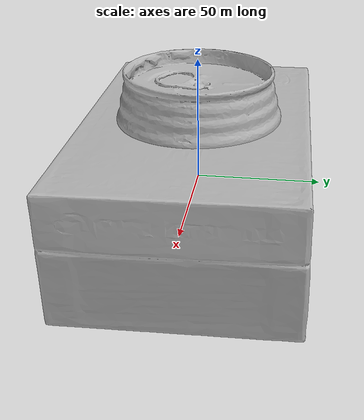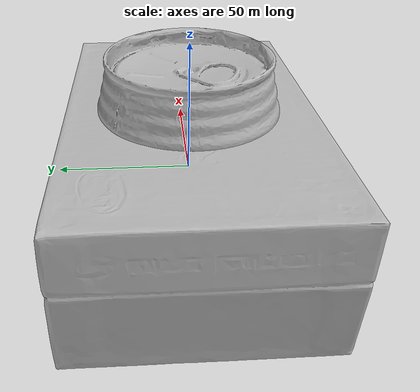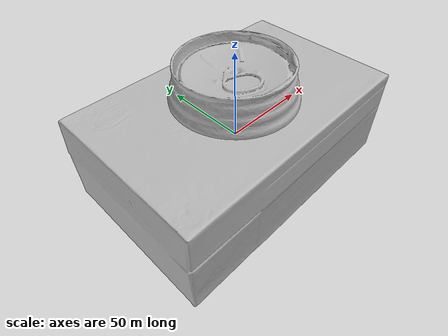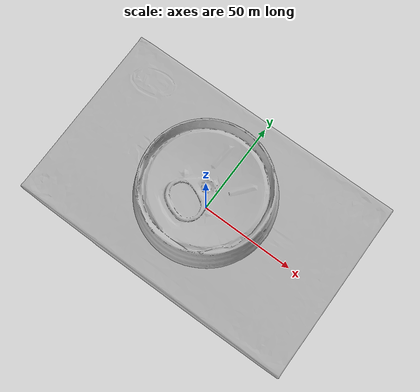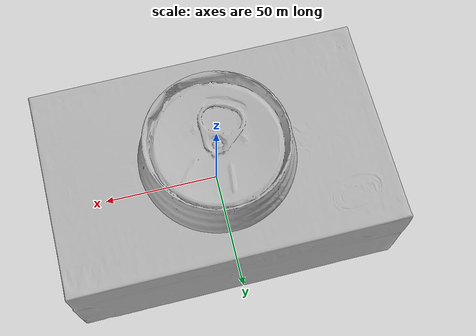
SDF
<?xml version="1.0" ?>
<sdf version="1.4">
  <world name="default">
    <light name="light1" type="point">
      <pose>0 0 1 0 0 0</pose>
      <diffuse>3 3 3 1</diffuse>
      <specular>3 3 3 1</specular>
    </light>
    <light name="light2" type="point">
      <pose>0 0.5 2 0 0 0</pose>
      <diffuse>1 1 1 1</diffuse>
      <specular>1 1 1 1</specular>
    </light>
    <light name="light3" type="point">
      <pose>0 0.5 2 0 0 0</pose>
      <diffuse>3 3 3 1</diffuse>
      <specular>3 3 3 1</specular>
    </light>
    <scene>
      <ambient>0.7 0.7 0.7</ambient>
    </scene>
    <model name="box1">
      <link name="link_box1">
        <collision name="default">
          <geometry>
            <mesh>
              <uri>model://realsense_box/collision_meshes/collision.obj</uri>
              <scale>1.0 1.0 1.0</scale>
            </mesh>
          </geometry>
          <surface>
            <friction>
              <ode>
                <mu>0.5</mu>
                <mu2>0.5</mu2>
              </ode>
            </friction>
          </surface>
        </collision>
        <visual name="default">
          <geometry>
            <mesh>
              <uri>model://realsense_box/visual_meshes/visual.dae</uri>
              <scale>1.0 1.0 1.0</scale>
            </mesh>
          </geometry>
        </visual>
        <inertial>
          <mass>0.5864310264587402</mass>
          <pose>4.0744838770478964e-05 8.587492629885674e-05 -2.4153792764991522e-05 -0.00012602841398420584 -0.00635893997803049 0.005012323893530406</pose>
          <inertia>
            <ixx>0.00055784633</ixx>
            <iyy>0.0011643406</iyy>
            <izz>0.0014403972</izz>
            <ixy>0</ixy>
            <ixz>0</ixz>
            <iyz>0</iyz>
          </inertia>
        </inertial>
      </link>
      <pose>0.2301051914691925 -0.3098393976688385 0.026866458356380463 0.008662532394356498 0.012169717696125893 -0.001176175961901633</pose>
    </model>
    <model name="box2">
      <link name="link_box2">
        <collision name="default">
          <geometry>
            <mesh>
              <uri>model://wooden_puzzle1/collision_meshes/collision.obj</uri>
              <scale>1.0 1.0 1.0</scale>
            </mesh>
          </geometry>
          <surface>
            <friction>
              <ode>
                <mu>0.5</mu>
                <mu2>0.5</mu2>
              </ode>
            </friction>
          </surface>
        </collision>
        <visual name="default">
          <geometry>
            <mesh>
              <uri>model://wooden_puzzle1/visual_meshes/visual.dae</uri>
              <scale>1.0 1.0 1.0</scale>
            </mesh>
          </geometry>
        </visual>
        <inertial>
          <mass>0.029293930158019066</mass>
          <pose>-0.00017350679263472557 7.972260209498927e-05 -9.191554272547364e-05 -0.07784356807478612 -0.26361316070226715 -0.552870069934309</pose>
          <inertia>
            <ixx>5.5269634e-06</ixx>
            <iyy>5.4205675e-06</iyy>
            <izz>5.4852344e-06</izz>
            <ixy>0</ixy>
            <ixz>0</ixz>
            <iyz>0</iyz>
          </inertia>
        </inertial>
      </link>
      <pose>0.10000669956207275 -0.2900063097476959 0.01686667464673519 0.00619018645279395 -0.009709383453279204 -0.0001345777006067722</pose>
    </model>
    <model name="box3">
      <link name="link_box3">
        <collision name="default">
          <geometry>
            <mesh>
              <uri>model://wooden_puzzle2/collision_meshes/collision.obj</uri>
              <scale>1.0 1.0 1.0</scale>
            </mesh>
          </geometry>
          <surface>
            <friction>
              <ode>
                <mu>0.5</mu>
                <mu2>0.5</mu2>
              </ode>
            </friction>
          </surface>
        </collision>
        <visual name="default">
          <geometry>
            <mesh>
              <uri>model://wooden_puzzle2/visual_meshes/visual.dae</uri>
              <scale>1.0 1.0 1.0</scale>
            </mesh>
          </geometry>
        </visual>
        <inertial>
          <mass>0.046210821717977524</mass>
          <pose>2.7402538762544282e-05 4.9976635636994615e-05 6.587122334167361e-05 -0.19202726218652877 0.6112834530151037 -0.6338736448019666</pose>
          <inertia>
            <ixx>8.590097e-06</ixx>
            <iyy>8.826809e-06</iyy>
            <izz>8.7012395e-06</izz>
            <ixy>0</ixy>
            <ixz>0</ixz>
            <iyz>0</iyz>
          </inertia>
        </inertial>
      </link>
      <pose>-0.09010519832372665 -0.3200235962867737 0.01691773720085621 0.020848691846025082 0.0007210201675179961 0.00023858731267961466</pose>
    </model>
    <model name="can1">
      <link name="link_can1">
        <collision name="default">
          <geometry>
            <mesh>
              <uri>model://pepsi/collision_meshes/collision.obj</uri>
              <scale>1.0 1.0 1.0</scale>
            </mesh>
          </geometry>
          <surface>
            <friction>
              <ode>
                <mu>0.5</mu>
                <mu2>0.5</mu2>
              </ode>
            </friction>
          </surface>
        </collision>
        <visual name="default">
          <geometry>
            <mesh>
              <uri>model://pepsi/visual_meshes/visual.dae</uri>
              <scale>1.0 1.0 1.0</scale>
            </mesh>
          </geometry>
        </visual>
        <inertial>
          <mass>0.38708412647247314</mass>
          <pose>-7.5590331107378e-05 2.9931279641459696e-05 -0.0003384356386959553 -0.0010677624110939459 -0.0021735778616849013 0.5673701652335379</pose>
          <inertia>
            <ixx>0.00077114574</ixx>
            <iyy>0.0007705839</iyy>
            <izz>0.00016412749</izz>
            <ixy>0</ixy>
            <ixz>0</ixz>
            <iyz>0</iyz>
          </inertia>
        </inertial>
      </link>
      <pose>0.2500181496143341 0.2999517619609833 0.07449626922607422 -1.6334119936535753e-05 1.8767139052173011e-06 -4.78779859377458e-06</pose>
    </model>
    <model name="can2">
      <link name="link_can2">
        <collision name="default">
          <geometry>
            <mesh>
              <uri>model://redbull/collision_meshes/collision.obj</uri>
              <scale>1.0 1.0 1.0</scale>
            </mesh>
          </geometry>
          <surface>
            <friction>
              <ode>
                <mu>0.5</mu>
                <mu2>0.5</mu2>
              </ode>
            </friction>
          </surface>
        </collision>
        <visual name="default">
          <geometry>
            <mesh>
              <uri>model://redbull/visual_meshes/visual.dae</uri>
              <scale>1.0 1.0 1.0</scale>
            </mesh>
          </geometry>
        </visual>
        <inertial>
          <mass>0.22841571271419525</mass>
          <pose>-2.2126563635538332e-05 -0.00012659550702665 -0.0006860988214612007 0.001137008533125708 -0.010800935482360328 0.5858832407094048</pose>
          <inertia>
            <ixx>0.00021475992</ixx>
            <iyy>0.00021494119</iyy>
            <izz>0.00012744407</izz>
            <ixy>0</ixy>
            <ixz>0</ixz>
            <iyz>0</iyz>
          </inertia>
        </inertial>
      </link>
      <pose>-0.05974602699279785 0.3106958270072937 0.04638565704226494 -0.010489543031993117 0.007260199691299269 -4.678833311549429e-05</pose>
    </model>
  </world>
</sdf>
